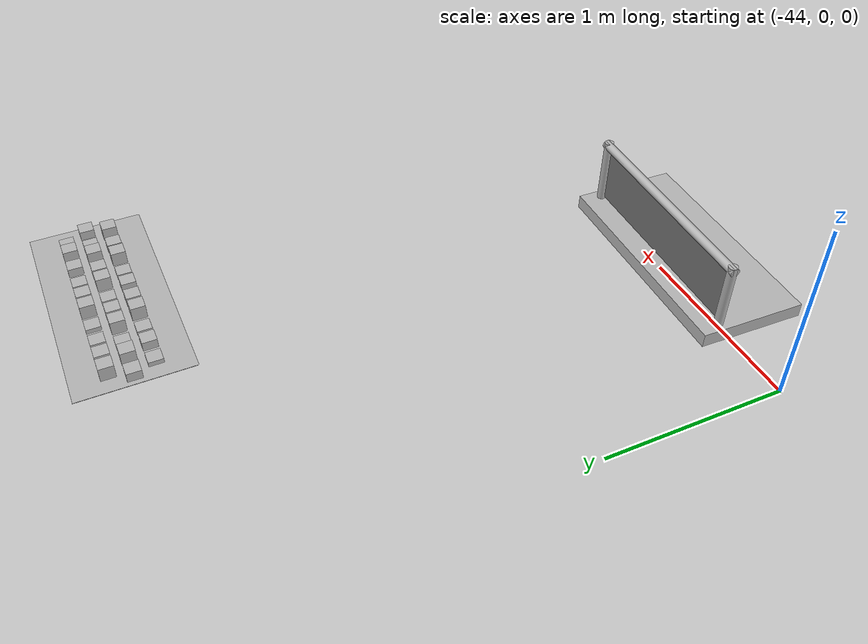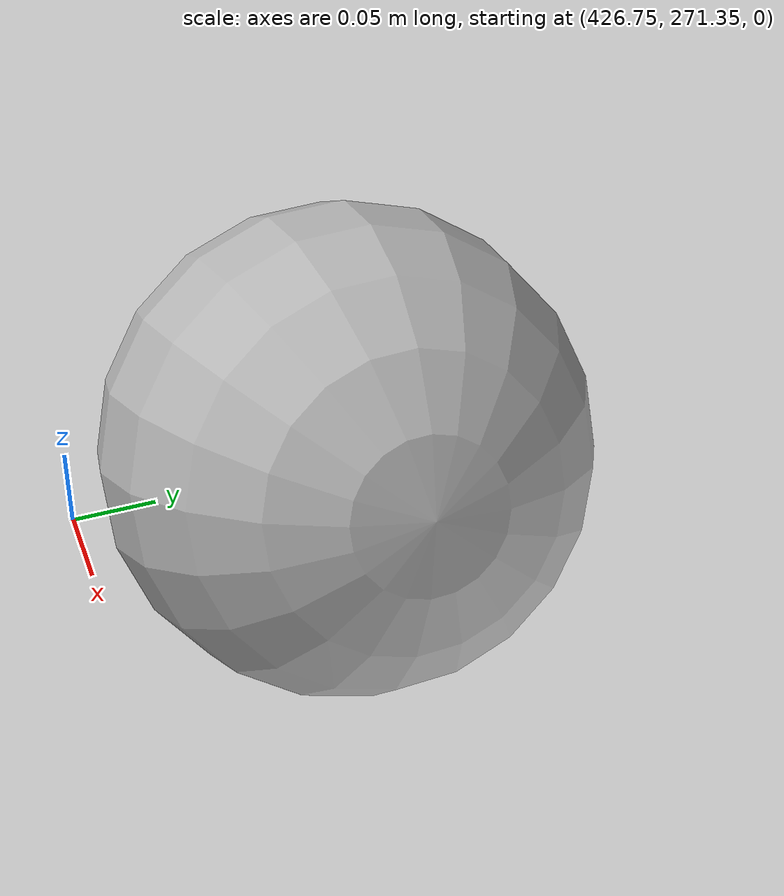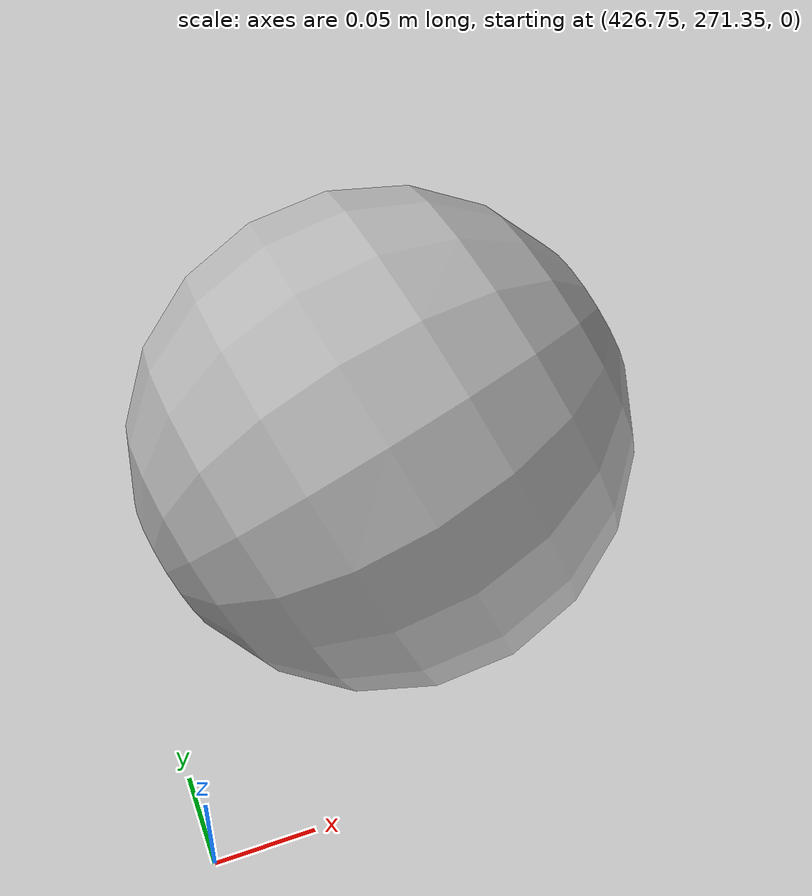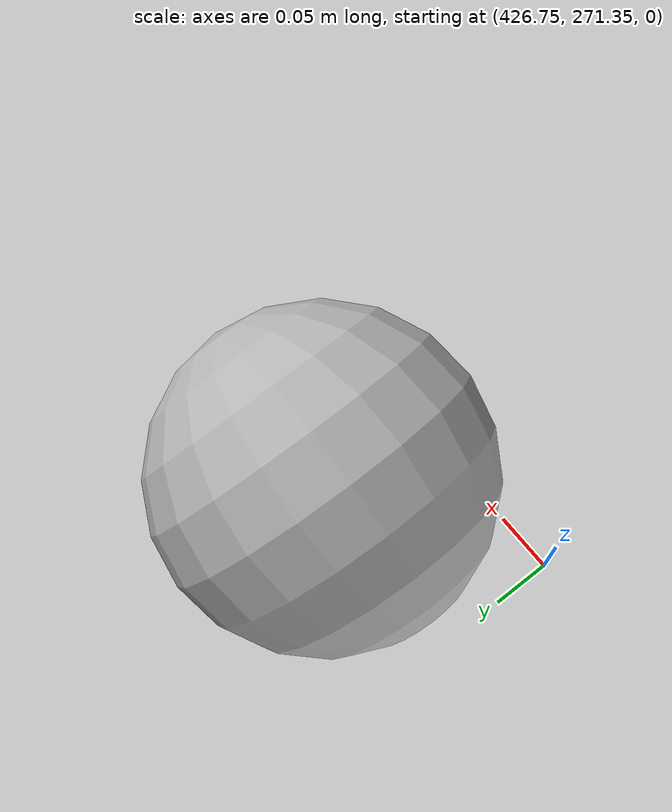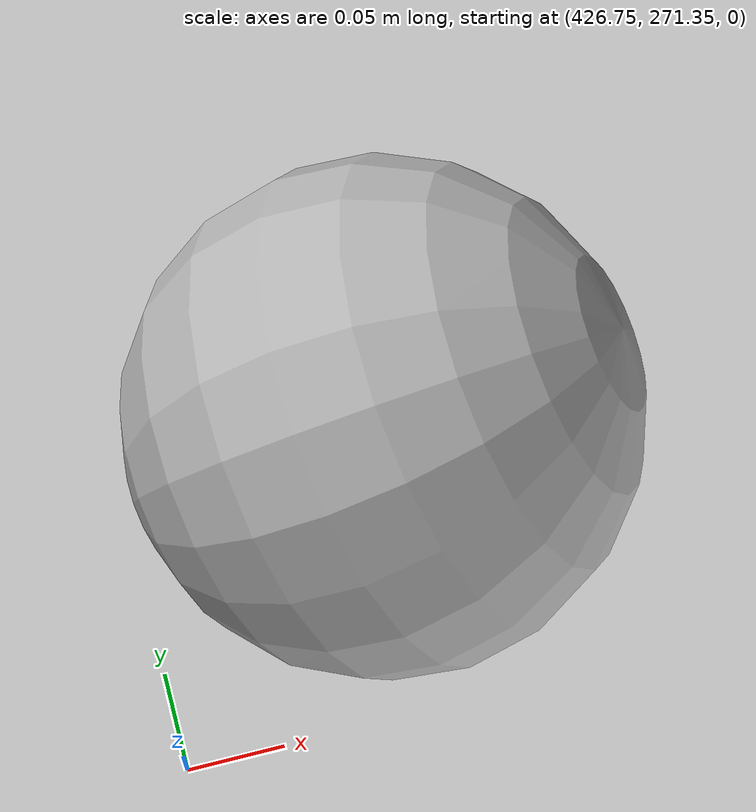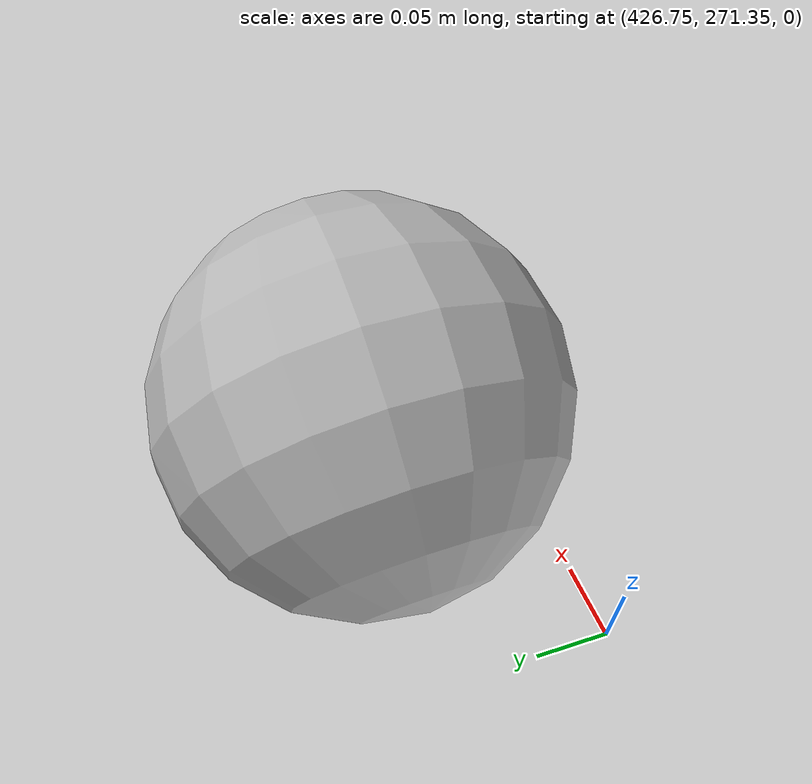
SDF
<sdf version="1.7">
 <world name="default">
  <light name="sun" type="directional">
   <pose>0 0 10 0 -0 0</pose>
   <diffuse>0.8 0.8 0.8 1</diffuse>
   <specular>0.2 0.2 0.2 1</specular>
   <attenuation>
    <range>1000</range>
    <constant>0.9</constant>
    <linear>0.01</linear>
    <quadratic>0.001</quadratic>
   </attenuation>
   <direction>-0.5 0.1 -0.9</direction>
   <spot><inner_angle>0</inner_angle><outer_angle>0</outer_angle><falloff>0</falloff></spot>
  </light>
  <model name="ground_plane">
   <static>1</static>
   <link name="link">
    <collision name="collision">
     <geometry><plane><normal>0 0 1</normal><size>100 100</size></plane></geometry>
     <surface>
      <contact><collide_bitmask>65535</collide_bitmask></contact>
      <friction><ode><mu>100</mu><mu2>50</mu2></ode></friction>
     </surface>
    </collision>
    <visual name="visual">
     <cast_shadows>0</cast_shadows>
     <geometry><plane><normal>0 0 1</normal><size>100 100</size></plane></geometry>
     <material>
      <script><uri>file://media/materials/scripts/gazebo.material</uri><name>Gazebo/Grey</name></script>
     </material>
    </visual>
   </link>
  </model>
  <gravity>0 0 -9.8</gravity>
  <magnetic_field>6e-06 2.3e-05 -4.2e-05</magnetic_field>
  <atmosphere type="adiabatic"/>
  <physics type="ode">
   <max_step_size>0.001</max_step_size>
   <real_time_factor>1</real_time_factor>
   <real_time_update_rate>1000</real_time_update_rate>
  </physics>
  <scene><ambient>0.4 0.4 0.4 1</ambient><background>0.7 0.7 0.7 1</background><shadows>1</shadows></scene>
  <audio><device>default</device></audio>
  <spherical_coordinates>
   <surface_model>EARTH_WGS84</surface_model>
   <latitude_deg>0</latitude_deg>
   <longitude_deg>0</longitude_deg>
   <elevation>0</elevation>
   <heading_deg>0</heading_deg>
  </spherical_coordinates>
  <model name="frc2016_roughterrain">
   <static>1</static>
   <link name="link">
    <visual name="platform">
     <pose>0 0 0.08269 0 -0 0</pose>
     <geometry><box><size>1.27 0.5969 0.003175</size></box></geometry>
    </visual>
    <collision name="platform">
     <pose>0 0 0.08269 0 -0 0</pose>
     <geometry><box><size>1.27 0.5969 0.003175</size></box></geometry>
    </collision>
    <visual name="row1_block1_sm">
     <pose>0.51435 0.1143 0.09698 0 -0 0</pose>
     <geometry><box><size>0.0762 0.0762 0.0254</size></box></geometry>
    </visual>
    <collision name="row1_block1_sm">
     <pose>0.51435 0.1143 0.09698 0 -0 0</pose>
     <geometry><box><size>0.0762 0.0762 0.0254</size></box></geometry>
    </collision>
    <visual name="row1_block2_lg">
     <pose>0.40005 0.1143 0.12238 0 -0 0</pose>
     <geometry><box><size>0.0762 0.0762 0.0762</size></box></geometry>
    </visual>
    <collision name="row1_block2_lg">
     <pose>0.40005 0.1143 0.12238 0 -0 0</pose>
     <geometry><box><size>0.0762 0.0762 0.0762</size></box></geometry>
    </collision>
    <visual name="row1_block3_md">
     <pose>0.28575 0.1143 0.10968 0 -0 0</pose>
     <geometry><box><size>0.0762 0.0762 0.0508</size></box></geometry>
    </visual>
    <collision name="row1_block3_md">
     <pose>0.28575 0.1143 0.10968 0 -0 0</pose>
     <geometry><box><size>0.0762 0.0762 0.0508</size></box></geometry>
    </collision>
    <visual name="row1_block4_sm">
     <pose>0.17145 0.1143 0.09698 0 -0 0</pose>
     <geometry><box><size>0.0762 0.0762 0.0254</size></box></geometry>
    </visual>
    <collision name="row1_block4_sm">
     <pose>0.17145 0.1143 0.09698 0 -0 0</pose>
     <geometry><box><size>0.0762 0.0762 0.0254</size></box></geometry>
    </collision>
    <visual name="row1_block5_md">
     <pose>0.05715 0.1143 0.10968 0 -0 0</pose>
     <geometry><box><size>0.0762 0.0762 0.0508</size></box></geometry>
    </visual>
    <collision name="row1_block5_md">
     <pose>0.05715 0.1143 0.10968 0 -0 0</pose>
     <geometry><box><size>0.0762 0.0762 0.0508</size></box></geometry>
    </collision>
    <visual name="row1_block6_lg">
     <pose>-0.05715 0.1143 0.12238 0 -0 0</pose>
     <geometry><box><size>0.0762 0.0762 0.0762</size></box></geometry>
    </visual>
    <collision name="row1_block6_lg">
     <pose>-0.05715 0.1143 0.12238 0 -0 0</pose>
     <geometry><box><size>0.0762 0.0762 0.0762</size></box></geometry>
    </collision>
    <visual name="row1_block7_sm">
     <pose>-0.17145 0.1143 0.09698 0 -0 0</pose>
     <geometry><box><size>0.0762 0.0762 0.0254</size></box></geometry>
    </visual>
    <collision name="row1_block7_sm">
     <pose>-0.17145 0.1143 0.09698 0 -0 0</pose>
     <geometry><box><size>0.0762 0.0762 0.0254</size></box></geometry>
    </collision>
    <visual name="row1_block8_sm">
     <pose>-0.28575 0.1143 0.09698 0 -0 0</pose>
     <geometry><box><size>0.0762 0.0762 0.0254</size></box></geometry>
    </visual>
    <collision name="row1_block8_sm">
     <pose>-0.28575 0.1143 0.09698 0 -0 0</pose>
     <geometry><box><size>0.0762 0.0762 0.0254</size></box></geometry>
    </collision>
    <visual name="row1_block9_md">
     <pose>-0.40005 0.1143 0.10968 0 -0 0</pose>
     <geometry><box><size>0.0762 0.0762 0.0508</size></box></geometry>
    </visual>
    <collision name="row1_block9_md">
     <pose>-0.40005 0.1143 0.10968 0 -0 0</pose>
     <geometry><box><size>0.0762 0.0762 0.0508</size></box></geometry>
    </collision>
    <visual name="row1_block10_lg">
     <pose>-0.51435 0.1143 0.12238 0 -0 0</pose>
     <geometry><box><size>0.0762 0.0762 0.0762</size></box></geometry>
    </visual>
    <collision name="row1_block10_lg">
     <pose>-0.51435 0.1143 0.12238 0 -0 0</pose>
     <geometry><box><size>0.0762 0.0762 0.0762</size></box></geometry>
    </collision>
    <visual name="row2_block1_md">
     <pose>0.5715 0 0.10968 0 -0 0</pose>
     <geometry><box><size>0.0762 0.0762 0.0508</size></box></geometry>
    </visual>
    <collision name="row2_block1_md">
     <pose>0.5715 0 0.10968 0 -0 0</pose>
     <geometry><box><size>0.0762 0.0762 0.0508</size></box></geometry>
    </collision>
    <visual name="row2_block2_sm">
     <pose>0.4572 0 0.09698 0 -0 0</pose>
     <geometry><box><size>0.0762 0.0762 0.0254</size></box></geometry>
    </visual>
    <collision name="row2_block2_sm">
     <pose>0.4572 0 0.09698 0 -0 0</pose>
     <geometry><box><size>0.0762 0.0762 0.0254</size></box></geometry>
    </collision>
    <visual name="row2_block3_lg">
     <pose>0.3429 0 0.12238 0 -0 0</pose>
     <geometry><box><size>0.0762 0.0762 0.0762</size></box></geometry>
    </visual>
    <collision name="row2_block3_lg">
     <pose>0.3429 0 0.12238 0 -0 0</pose>
     <geometry><box><size>0.0762 0.0762 0.0762</size></box></geometry>
    </collision>
    <visual name="row2_block4_md">
     <pose>0.2286 0 0.10968 0 -0 0</pose>
     <geometry><box><size>0.0762 0.0762 0.0508</size></box></geometry>
    </visual>
    <collision name="row2_block4_md">
     <pose>0.2286 0 0.10968 0 -0 0</pose>
     <geometry><box><size>0.0762 0.0762 0.0508</size></box></geometry>
    </collision>
    <visual name="row2_block5_lg">
     <pose>0.1143 0 0.12238 0 -0 0</pose>
     <geometry><box><size>0.0762 0.0762 0.0762</size></box></geometry>
    </visual>
    <collision name="row2_block5_lg">
     <pose>0.1143 0 0.12238 0 -0 0</pose>
     <geometry><box><size>0.0762 0.0762 0.0762</size></box></geometry>
    </collision>
    <visual name="row2_block6_sm">
     <pose>0 0 0.09698 0 -0 0</pose>
     <geometry><box><size>0.0762 0.0762 0.0254</size></box></geometry>
    </visual>
    <collision name="row2_block6_sm">
     <pose>0 0 0.09698 0 -0 0</pose>
     <geometry><box><size>0.0762 0.0762 0.0254</size></box></geometry>
    </collision>
    <visual name="row2_block7_md">
     <pose>-0.1143 0 0.10968 0 -0 0</pose>
     <geometry><box><size>0.0762 0.0762 0.0508</size></box></geometry>
    </visual>
    <collision name="row2_block7_md">
     <pose>-0.1143 0 0.10968 0 -0 0</pose>
     <geometry><box><size>0.0762 0.0762 0.0508</size></box></geometry>
    </collision>
    <visual name="row2_block8_lg">
     <pose>-0.2286 0 0.12238 0 -0 0</pose>
     <geometry><box><size>0.0762 0.0762 0.0762</size></box></geometry>
    </visual>
    <collision name="row2_block8_lg">
     <pose>-0.2286 0 0.12238 0 -0 0</pose>
     <geometry><box><size>0.0762 0.0762 0.0762</size></box></geometry>
    </collision>
    <visual name="row2_block9_sm">
     <pose>-0.3429 0 0.09698 0 -0 0</pose>
     <geometry><box><size>0.0762 0.0762 0.0254</size></box></geometry>
    </visual>
    <collision name="row2_block9_sm">
     <pose>-0.3429 0 0.09698 0 -0 0</pose>
     <geometry><box><size>0.0762 0.0762 0.0254</size></box></geometry>
    </collision>
    <visual name="row2_block10_lg">
     <pose>-0.4572 0 0.12238 0 -0 0</pose>
     <geometry><box><size>0.0762 0.0762 0.0762</size></box></geometry>
    </visual>
    <collision name="row2_block10_lg">
     <pose>-0.4572 0 0.12238 0 -0 0</pose>
     <geometry><box><size>0.0762 0.0762 0.0762</size></box></geometry>
    </collision>
    <visual name="row2_block11_md">
     <pose>-0.5715 0 0.10968 0 -0 0</pose>
     <geometry><box><size>0.0762 0.0762 0.0508</size></box></geometry>
    </visual>
    <collision name="row2_block11_md">
     <pose>-0.5715 0 0.10968 0 -0 0</pose>
     <geometry><box><size>0.0762 0.0762 0.0508</size></box></geometry>
    </collision>
    <visual name="row3_block1_lg">
     <pose>0.51435 -0.1143 0.12238 0 -0 0</pose>
     <geometry><box><size>0.0762 0.0762 0.0762</size></box></geometry>
    </visual>
    <collision name="row3_block1_lg">
     <pose>0.51435 -0.1143 0.12238 0 -0 0</pose>
     <geometry><box><size>0.0762 0.0762 0.0762</size></box></geometry>
    </collision>
    <visual name="row3_block2_md">
     <pose>0.40005 -0.1143 0.10968 0 -0 0</pose>
     <geometry><box><size>0.0762 0.0762 0.0508</size></box></geometry>
    </visual>
    <collision name="row3_block2_md">
     <pose>0.40005 -0.1143 0.10968 0 -0 0</pose>
     <geometry><box><size>0.0762 0.0762 0.0508</size></box></geometry>
    </collision>
    <visual name="row3_block3_lg">
     <pose>0.28575 -0.1143 0.12238 0 -0 0</pose>
     <geometry><box><size>0.0762 0.0762 0.0762</size></box></geometry>
    </visual>
    <collision name="row3_block3_lg">
     <pose>0.28575 -0.1143 0.12238 0 -0 0</pose>
     <geometry><box><size>0.0762 0.0762 0.0762</size></box></geometry>
    </collision>
    <visual name="row3_block4_sm">
     <pose>0.17145 -0.1143 0.09698 0 -0 0</pose>
     <geometry><box><size>0.0762 0.0762 0.0254</size></box></geometry>
    </visual>
    <collision name="row3_block4_sm">
     <pose>0.17145 -0.1143 0.09698 0 -0 0</pose>
     <geometry><box><size>0.0762 0.0762 0.0254</size></box></geometry>
    </collision>
    <visual name="row3_block5_md">
     <pose>0.05715 -0.1143 0.10968 0 -0 0</pose>
     <geometry><box><size>0.0762 0.0762 0.0508</size></box></geometry>
    </visual>
    <collision name="row3_block5_md">
     <pose>0.05715 -0.1143 0.10968 0 -0 0</pose>
     <geometry><box><size>0.0762 0.0762 0.0508</size></box></geometry>
    </collision>
    <visual name="row3_block6_md">
     <pose>-0.05715 -0.1143 0.10968 0 -0 0</pose>
     <geometry><box><size>0.0762 0.0762 0.0508</size></box></geometry>
    </visual>
    <collision name="row3_block6_md">
     <pose>-0.05715 -0.1143 0.10968 0 -0 0</pose>
     <geometry><box><size>0.0762 0.0762 0.0508</size></box></geometry>
    </collision>
    <visual name="row3_block7_lg">
     <pose>-0.17145 -0.1143 0.12238 0 -0 0</pose>
     <geometry><box><size>0.0762 0.0762 0.0762</size></box></geometry>
    </visual>
    <collision name="row3_block7_lg">
     <pose>-0.17145 -0.1143 0.12238 0 -0 0</pose>
     <geometry><box><size>0.0762 0.0762 0.0762</size></box></geometry>
    </collision>
    <visual name="row3_block8_sm">
     <pose>-0.28575 -0.1143 0.09698 0 -0 0</pose>
     <geometry><box><size>0.0762 0.0762 0.0254</size></box></geometry>
    </visual>
    <collision name="row3_block8_sm">
     <pose>-0.28575 -0.1143 0.09698 0 -0 0</pose>
     <geometry><box><size>0.0762 0.0762 0.0254</size></box></geometry>
    </collision>
    <visual name="row3_block9_md">
     <pose>-0.40005 -0.1143 0.10968 0 -0 0</pose>
     <geometry><box><size>0.0762 0.0762 0.0508</size></box></geometry>
    </visual>
    <collision name="row3_block9_md">
     <pose>-0.40005 -0.1143 0.10968 0 -0 0</pose>
     <geometry><box><size>0.0762 0.0762 0.0508</size></box></geometry>
    </collision>
    <visual name="row3_block10_sm">
     <pose>-0.51435 -0.1143 0.09698 0 -0 0</pose>
     <geometry><box><size>0.0762 0.0762 0.0254</size></box></geometry>
    </visual>
    <collision name="row3_block10_sm">
     <pose>-0.51435 -0.1143 0.09698 0 -0 0</pose>
     <geometry><box><size>0.0762 0.0762 0.0254</size></box></geometry>
    </collision>
   </link>
   <pose>-42.1926 2.84411 0.082361 0 -0 0</pose>
  </model>
  <model name="frc2016_ball">
   <pose>426.882 271.475 0.126478 -0.845436 -0.948431 -2.16899</pose>
   <link name="link">
    <inertial>
     <mass>0.213</mass>
     <inertia>
      <ixx>0.00322667</ixx>
      <ixy>0</ixy>
      <ixz>0</ixz>
      <iyy>0.00322667</iyy>
      <iyz>0</iyz>
      <izz>0.00322667</izz>
     </inertia>
    </inertial>
    <visual name="visual"><geometry><sphere><radius>0.127</radius></sphere></geometry></visual>
    <collision name="collision">
     <geometry><sphere><radius>0.127</radius></sphere></geometry>
     <surface>
      <bounce><restitution_coefficient>0.15937</restitution_coefficient><threshold>0</threshold></bounce>
      <contact><ode><max_vel>100</max_vel><min_depth>0.001</min_depth></ode></contact>
     </surface>
    </collision>
   </link>
  </model>
  <model name="frc2016_lowbar">
   <link name="base">
    <inertial>
     <mass>50</mass>
     <inertia>
      <ixx>0.035543</ixx>
      <ixy>0</ixy>
      <ixz>0</ixz>
      <iyy>0.134412</iyy>
      <iyz>0</iyz>
      <izz>0.165376</izz>
     </inertia>
    </inertial>
    <visual name="platform">
     <pose>0 0 0.039065 0 -0 0</pose>
     <geometry><box><size>1.26 0.5996 0.07813</size></box></geometry>
    </visual>
    <collision name="platform">
     <pose>0 0 0.039065 0 -0 0</pose>
     <geometry><box><size>1.27 0.6096 0.07813</size></box></geometry>
    </collision>
    <visual name="right_column">
     <pose>-0.57845 -0.18464 0.26863 0 -0 0</pose>
     <geometry><cylinder><radius>0.0254</radius><length>0.381</length></cylinder></geometry>
    </visual>
    <collision name="right_column">
     <pose>-0.57845 -0.18464 0.26863 0 -0 0</pose>
     <geometry><cylinder><radius>0.0254</radius><length>0.381</length></cylinder></geometry>
    </collision>
    <visual name="left_column">
     <pose>0.57845 -0.18464 0.26863 0 -0 0</pose>
     <geometry><cylinder><radius>0.0254</radius><length>0.381</length></cylinder></geometry>
    </visual>
    <collision name="left_column">
     <pose>0.57845 -0.18464 0.26863 0 -0 0</pose>
     <geometry><cylinder><radius>0.0254</radius><length>0.381</length></cylinder></geometry>
    </collision>
    <visual name="horizontal">
     <pose>0 -0.18464 0.43556 0 1.5707 0</pose>
     <geometry><cylinder><radius>0.0254</radius><length>1.2018</length></cylinder></geometry>
    </visual>
    <collision name="horizontal">
     <pose>0 -0.18464 0.43556 0 1.5707 0</pose>
     <geometry><cylinder><radius>0.0254</radius><length>1.2018</length></cylinder></geometry>
    </collision>
   </link>
   <link name="wall">
    <pose>0 -0.1778 0.24323 0 -0 0</pose>
    <inertial>
     <mass>1</mass>
     <inertia>
      <ixx>0.00774528</ixx>
      <ixy>0</ixy>
      <ixz>0</ixz>
      <iyy>0.116613</iyy>
      <iyz>0</iyz>
      <izz>0.108874</izz>
     </inertia>
    </inertial>
    <visual name="visual">
     <geometry><box><size>1.1176 0.00635 0.3</size></box></geometry>
     <material><ambient>0.46 0.46 0.46 1</ambient><diffuse>0.46 0.46 0.46 1</diffuse></material>
    </visual>
    <collision name="collision"><geometry><box><size>1.143 0.00635 0.3</size></box></geometry></collision>
   </link>
   <joint name="bar_joint" type="revolute">
    <pose>0 0 0.36378 0 -0 0</pose>
    <parent>base</parent>
    <child>wall</child>
    <axis>
     <xyz>1 0 0</xyz>
     <limit><lower>-1.5707</lower><upper>1.5707</upper></limit>
     <dynamics><spring_reference>0</spring_reference><spring_stiffness>0</spring_stiffness></dynamics>
    </axis>
   </joint>
   <pose>-42.9763 -0.158518 -0.000101 0 -0.000159 3.11093</pose>
  </model>
 </world>
</sdf>
